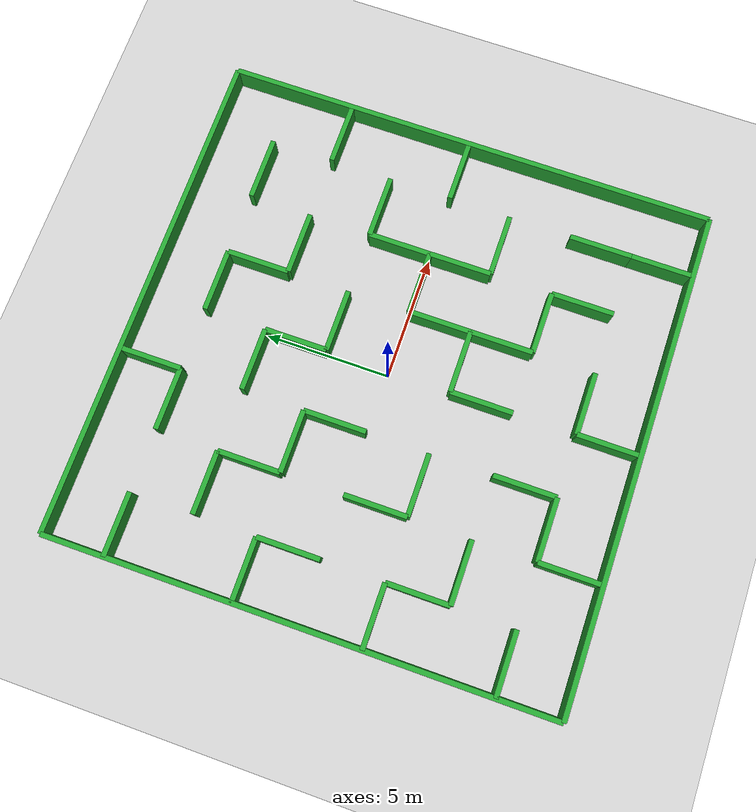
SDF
<?xml version="1.0" ?>
<sdf version="1.6">
  <world name="complex_maze_v4_edited">

    <!-- Physics Engine Configuration -->
    <physics type="ode">
      <max_step_size>0.004</max_step_size>
      <real_time_factor>1</real_time_factor>
      <real_time_update_rate>250</real_time_update_rate>
      <gravity>0 0 -9.8</gravity>
    </physics>

    <!-- Scene Lighting and Background -->
    <scene>
      <shadows>true</shadows>
      <ambient>0.4 0.4 0.4 1</ambient>
      <background>0.7 0.7 0.7 1</background>
      <grid>false</grid>
      <origin_visual>false</origin_visual>
    </scene>

    <!-- Main directional light (Sun) -->
    <light type="directional" name="sun">
      <cast_shadows>true</cast_shadows>
      <pose>0 0 10 0 0 0</pose>
      <diffuse>0.8 0.8 0.8 1</diffuse>
      <specular>0.2 0.2 0.2 1</specular>
      <direction>-0.5 0.1 -0.9</direction>
    </light>

    <!-- A simple grey ground plane -->
    <model name="ground_plane">
      <static>true</static>
      <link name="link">
        <collision name="collision">
          <geometry>
            <plane>
              <normal>0 0 1</normal>
              <size>100 100</size>
            </plane>
          </geometry>
        </collision>
        <visual name="visual">
          <cast_shadows>false</cast_shadows>
          <geometry>
            <plane>
              <normal>0 0 1</normal>
              <size>100 100</size>
            </plane>
          </geometry>
          <material>
            <script>
              <uri>file://media/materials/scripts/gazebo.material</uri>
              <name>Gazebo/Grey</name>
            </script>
          </material>
        </visual>
      </link>
    </model>

    <!--
    ============================================================
    MAZE WALLS (New, complex, solvable maze)
    ============================================================
    -->
    <model name="complex_maze_walls">
      <static>true</static>
      <pose>0 0 0 0 0 0</pose>

      <!-- Gazebo Material for walls -->
      <visual name="v_mat">
        <geometry><box><size>0.1 0.1 0.1</size></box></geometry>
        <pose>0 0 -100 0 0 0</pose> <!-- Hide this box -->
        <material>
          <script>
            <uri>file://media/materials/scripts/gazebo.material</uri>
            <name>Gazebo/Green</name>
          </script>
        </material>
      </visual>

      <!-- Outer Walls (20x20 meters) -->
      <link name="wall_north">
        <collision name="col_north"><geometry><box><size>20 0.2 1</size></box></geometry></collision>
        <visual name="vis_north"><geometry><box><size>20 0.2 1</size></box></geometry><material><script><name>Gazebo/Green</name></script></material></visual>
        <pose>0 10 0.5 0 0 0</pose>
      </link>
      <link name="wall_south">
        <collision name="col_south"><geometry><box><size>20 0.2 1</size></box></geometry></collision>
        <visual name="vis_south"><geometry><box><size>20 0.2 1</size></box></geometry><material><script><name>Gazebo/Green</name></script></material></visual>
        <pose>0 -10 0.5 0 0 0</pose>
      </link>
      <link name="wall_east">
        <collision name="col_east"><geometry><box><size>0.2 20 1</size></box></geometry></collision>
        <visual name="vis_east"><geometry><box><size>0.2 20 1</size></box></geometry><material><script><name>Gazebo/Green</name></script></material></visual>
        <pose>10 0 0.5 0 0 0</pose>
      </link>
      <link name="wall_west">
        <collision name="col_west"><geometry><box><size>0.2 20 1</size></box></geometry></collision>
        <visual name="vis_west"><geometry><box><size>0.2 20 1</size></box></geometry><material><script><name>Gazebo/Green</name></script></material></visual>
        <pose>-10 0 0.5 0 0 0</pose>
      </link>

      <!-- Maze Interior Grid -->
      <!-- Corridors are 2.5m wide. Walls are at -7.5, -5, -2.5, 0, 2.5, 5, 7.5 -->

      <!-- Horizontal Walls -->
      <link name="h_wall_1">
        <collision name="col_h1"><geometry><box><size>2.5 0.2 1</size></box></geometry></collision>
        <visual name="vis_h1"><geometry><box><size>2.5 0.2 1</size></box></geometry><material><script><name>Gazebo/Green</name></script></material></visual>
        <pose>-8.75 7.5 0.5 0 0 0</pose>
      </link>
      <link name="h_wall_2">
        <collision name="col_h2"><geometry><box><size>2.5 0.2 1</size></box></geometry></collision>
        <visual name="vis_h2"><geometry><box><size>2.5 0.2 1</size></box></geometry><material><script><name>Gazebo/Green</name></script></material></visual>
        <pose>-3.75 7.5 0.5 0 0 0</pose>
      </link>
      <link name="h_wall_3">
        <collision name="col_h3"><geometry><box><size>2.5 0.2 1</size></box></geometry></collision>
        <visual name="vis_h3"><geometry><box><size>2.5 0.2 1</size></box></geometry><material><script><name>Gazebo/Green</name></script></material></visual>
        <pose>1.25 7.5 0.5 0 0 0</pose>
      </link>
      <link name="h_wall_4">
        <collision name="col_h4"><geometry><box><size>2.5 0.2 1</size></box></geometry></collision>
        <visual name="vis_h4"><geometry><box><size>2.5 0.2 1</size></box></geometry><material><script><name>Gazebo/Green</name></script></material></visual>
        <pose>6.25 7.5 0.5 0 0 0</pose>
      </link>

      <link name="h_wall_5">
        <collision name="col_h5"><geometry><box><size>2.5 0.2 1</size></box></geometry></collision>
        <visual name="vis_h5"><geometry><box><size>2.5 0.2 1</size></box></geometry><material><script><name>Gazebo/Green</name></script></material></visual>
        <pose>-6.25 5 0.5 0 0 0</pose>
      </link>
      <link name="h_wall_6">
        <collision name="col_h6"><geometry><box><size>2.5 0.2 1</size></box></geometry></collision>
        <visual name="vis_h6"><geometry><box><size>2.5 0.2 1</size></box></geometry><material><script><name>Gazebo/Green</name></script></material></visual>
        <pose>-1.25 5 0.5 0 0 0</pose>
      </link>
      <link name="h_wall_7">
        <collision name="col_h7"><geometry><box><size>2.5 0.2 1</size></box></geometry></collision>
        <visual name="vis_h7"><geometry><box><size>2.5 0.2 1</size></box></geometry><material><script><name>Gazebo/Green</name></script></material></visual>
        <pose>3.75 5 0.5 0 0 0</pose>
      </link>
      <link name="h_wall_8">
        <collision name="col_h8"><geometry><box><size>2.5 0.2 1</size></box></geometry></collision>
        <visual name="vis_h8"><geometry><box><size>2.5 0.2 1</size></box></geometry><material><script><name>Gazebo/Green</name></script></material></visual>
        <pose>8.75 5 0.5 0 0 0</pose>
      </link>

      <link name="h_wall_9">
        <collision name="col_h9"><geometry><box><size>2.5 0.2 1</size></box></geometry></collision>
        <visual name="vis_h9"><geometry><box><size>2.5 0.2 1</size></box></geometry><material><script><name>Gazebo/Green</name></script></material></visual>
        <pose>-8.75 2.5 0.5 0 0 0</pose>
      </link>
      <link name="h_wall_10">
        <collision name="col_h10"><geometry><box><size>2.5 0.2 1</size></box></geometry></collision>
        <visual name="vis_h10"><geometry><box><size>2.5 0.2 1</size></box></geometry><material><script><name>Gazebo/Green</name></script></material></visual>
        <pose>-3.75 2.5 0.5 0 0 0</pose>
      </link>
      <link name="h_wall_11">
        <collision name="col_h11"><geometry><box><size>2.5 0.2 1</size></box></geometry></collision>
        <visual name="vis_h11"><geometry><box><size>2.5 0.2 1</size></box></geometry><material><script><name>Gazebo/Green</name></script></material></visual>
        <pose>1.25 2.5 0.5 0 0 0</pose>
      </link>
      <link name="h_wall_12">
        <collision name="col_h12"><geometry><box><size>2.5 0.2 1</size></box></geometry></collision>
        <visual name="vis_h12"><geometry><box><size>2.5 0.2 1</size></box></geometry><material><script><name>Gazebo/Green</name></script></material></visual>
        <pose>6.25 2.5 0.5 0 0 0</pose>
      </link>

      <!-- REMOVED h_wall_13 (-6.25, 0) -->

      <link name="h_wall_14">
        <collision name="col_h14"><geometry><box><size>2.5 0.2 1</size></box></geometry></collision>
        <visual name="vis_h14"><geometry><box><size>2.5 0.2 1</size></box></geometry><material><script><name>Gazebo/Green</name></script></material></visual>
        <pose>3.75 0 0.5 0 0 0</pose>
      </link>
      <link name="h_wall_15">
        <collision name="col_h15"><geometry><box><size>2.5 0.2 1</size></box></geometry></collision>
        <visual name="vis_h15"><geometry><box><size>2.5 0.2 1</size></box></geometry><material><script><name>Gazebo/Green</name></script></material></visual>
        <pose>8.75 0 0.5 0 0 0</pose>
      </link>

      <link name="h_wall_16">
        <collision name="col_h16"><geometry><box><size>2.5 0.2 1</size></box></geometry></collision>
        <visual name="vis_h16"><geometry><box><size>2.5 0.2 1</size></box></geometry><material><script><name>Gazebo/Green</name></script></material></visual>
        <pose>-8.75 -2.5 0.5 0 0 0</pose>
      </link>
      <link name="h_wall_17">
        <collision name="col_h17"><geometry><box><size>2.5 0.2 1</size></box></geometry></collision>
        <visual name="vis_h17"><geometry><box><size>2.5 0.2 1</size></box></geometry><material><script><name>Gazebo/Green</name></script></material></visual>
        <pose>-3.75 -2.5 0.5 0 0 0</pose>
      </link>
      <link name="h_wall_18">
        <collision name="col_h18"><geometry><box><size>2.5 0.2 1</size></box></geometry></collision>
        <visual name="vis_h18"><geometry><box><size>2.5 0.2 1</size></box></geometry><material><script><name>Gazebo/Green</name></script></material></visual>
        <pose>1.25 -2.5 0.5 0 0 0</pose>
      </link>
      <link name="h_wall_19">
        <collision name="col_h19"><geometry><box><size>2.5 0.2 1</size></box></geometry></collision>
        <visual name="vis_h19"><geometry><box><size>2.5 0.2 1</size></box></geometry><material><script><name>Gazebo/Green</name></script></material></visual>
        <pose>6.25 -2.5 0.5 0 0 0</pose>
      </link>

      <link name="h_wall_20">
        <collision name="col_h20"><geometry><box><size>2.5 0.2 1</size></box></geometry></collision>
        <visual name="vis_h20"><geometry><box><size>2.5 0.2 1</size></box></geometry><material><script><name>Gazebo/Green</name></script></material></visual>
        <pose>-6.25 -5 0.5 0 0 0</pose>
      </link>

      <!-- REMOVED h_wall_21 (-1.25, -5) -->

      <link name="h_wall_22">
        <collision name="col_h22"><geometry><box><size>2.5 0.2 1</size></box></geometry></collision>
        <visual name="vis_h22"><geometry><box><size>2.5 0.2 1</size></box></geometry><material><script><name>Gazebo/Green</name></script></material></visual>
        <pose>3.75 -5 0.5 0 0 0</pose>
      </link>

      <!-- REMOVED h_wall_23 (8.75, -5) -->

      <link name="h_wall_24">
        <collision name="col_h24"><geometry><box><size>2.5 0.2 1</size></box></geometry></collision>
        <visual name="vis_h24"><geometry><box><size>2.5 0.2 1</size></box></geometry><material><script><name>Gazebo/Green</name></script></material></visual>
        <pose>-8.75 -7.5 0.5 0 0 0</pose>
      </link>
      <link name="h_wall_25">
        <collision name="col_h25"><geometry><box><size>2.5 0.2 1</size></box></geometry></collision>
        <visual name="vis_h25"><geometry><box><size>2.5 0.2 1</size></box></geometry><material><script><name>Gazebo/Green</name></script></material></visual>
        <pose>-3.75 -7.5 0.5 0 0 0</pose>
      </link>
      <link name="h_wall_26">
        <collision name="col_h26"><geometry><box><size>2.5 0.2 1</size></box></geometry></collision>
        <visual name="vis_h26"><geometry><box><size>2.5 0.2 1</size></box></geometry><material><script><name>Gazebo/Green</name></script></material></visual>
        <pose>1.25 -7.5 0.5 0 0 0</pose>
      </link>

      <!-- REMOVED h_wall_27 (6.25, -7.5) -->

      <!-- Vertical Walls -->

      <!-- REMOVED v_wall_1 (-7.5, 8.75) -->

      <link name="v_wall_2">
        <collision name="col_v2"><geometry><box><size>0.2 2.5 1</size></box></geometry></collision>
        <visual name="vis_v2"><geometry><box><size>0.2 2.5 1</size></box></geometry><material><script><name>Gazebo/Green</name></script></material></visual>
        <pose>-5 3.75 0.5 0 0 0</pose>
      </link>
      <link name="v_wall_3">
        <collision name="col_v3"><geometry><box><size>0.2 2.5 1</size></box></geometry></collision>
        <visual name="vis_v3"><geometry><box><size>0.2 2.5 1</size></box></geometry><material><script><name>Gazebo/Green</name></script></material></visual>
        <pose>-2.5 8.75 0.5 0 0 0</pose>
      </link>
      <link name="v_wall_4">
        <collision name="col_v4"><geometry><box><size>0.2 2.5 1</size></box></geometry></collision>
        <visual name="vis_v4"><geometry><box><size>0.2 2.5 1</size></box></geometry><material><script><name>Gazebo/Green</name></script></material></visual>
        <pose>0 3.75 0.5 0 0 0</pose>
      </link>
      <link name="v_wall_5">
        <collision name="col_v5"><geometry><box><size>0.2 2.5 1</size></box></geometry></collision>
        <visual name="vis_v5"><geometry><box><size>0.2 2.5 1</size></box></geometry><material><script><name>Gazebo/Green</name></script></material></visual>
        <pose>2.5 6.25 0.5 0 0 0</pose>
      </link>
      <link name="v_wall_6">
        <collision name="col_v6"><geometry><box><size>0.2 2.5 1</size></box></geometry></collision>
        <visual name="vis_v6"><geometry><box><size>0.2 2.5 1</size></box></geometry><material><script><name>Gazebo/Green</name></script></material></visual>
        <pose>5 1.25 0.5 0 0 0</pose>
      </link>

      <!-- REMOVED v_wall_7 (7.5, 3.75) -->

      <link name="v_wall_8">
        <collision name="col_v8"><geometry><box><size>0.2 2.5 1</size></box></geometry></collision>
        <visual name="vis_v8"><geometry><box><size>0.2 2.5 1</size></box></geometry><material><script><name>Gazebo/Green</name></script></material></visual>
        <pose>-7.5 1.25 0.5 0 0 0</pose>
      </link>
      <link name="v_wall_9">
        <collision name="col_v9"><geometry><box><size>0.2 2.5 1</size></box></geometry></collision>
        <visual name="vis_v9"><geometry><box><size>0.2 2.5 1</size></box></geometry><material><script><name>Gazebo/Green</name></script></material></visual>
        <pose>-5 -1.25 0.5 0 0 0</pose>
      </link>
      <link name="v_wall_10">
        <collision name="col_v10"><geometry><box><size>0.2 2.5 1</size></box></geometry></collision>
        <visual name="vis_v10"><geometry><box><size>0.2 2.5 1</size></box></geometry><material><script><name>Gazebo/Green</name></script></material></visual>
        <pose>-2.5 1.25 0.5 0 0 0</pose>
      </link>
      <link name="v_wall_11">
        <collision name="col_v11"><geometry><box><size>0.2 2.5 1</size></box></geometry></collision>
        <visual name="vis_v11"><geometry><box><size>0.2 2.5 1</size></box></geometry><material><script><name>Gazebo/Green</name></script></material></visual>
        <pose>0 -3.75 0.5 0 0 0</pose>
      </link>
      <link name="v_wall_12">
        <collision name="col_v12"><geometry><box><size>0.2 2.5 1</size></box></geometry></collision>
        <visual name="vis_v12"><geometry><box><size>0.2 2.5 1</size></box></geometry><material><script><name>Gazebo/Green</name></script></material></visual>
        <pose>2.5 -1.25 0.5 0 0 0</pose>
      </link>
      <link name="v_wall_13">
        <collision name="col_v13"><geometry><box><size>0.2 2.5 1</size></box></geometry></collision>
        <visual name="vis_v13"><geometry><box><size>0.2 2.5 1</size></box></geometry><material><script><name>Gazebo/Green</name></script></material></visual>
        <pose>5 -6.25 0.5 0 0 0</pose>
      </link>
      <link name="v_wall_14">
        <collision name="col_v14"><geometry><box><size>0.2 2.5 1</size></box></geometry></collision>
        <visual name="vis_v14"><geometry><box><size>0.2 2.5 1</size></box></geometry><material><script><name>Gazebo/Green</name></script></material></visual>
        <pose>7.5 -8.75 0.5 0 0 0</pose>
      </link>

      <link name="v_wall_15">
        <collision name="col_v15"><geometry><box><size>0.2 2.5 1</size></box></geometry></collision>
        <visual name="vis_v15"><geometry><box><size>0.2 2.5 1</size></box></geometry><material><script><name>Gazebo/Green</name></script></material></visual>
        <pose>-7.5 -3.75 0.5 0 0 0</pose>
      </link>
      <link name="v_wall_16">
        <collision name="col_v16"><geometry><box><size>0.2 2.5 1</size></box></geometry></collision>
        <visual name="vis_v16"><geometry><box><size>0.2 2.5 1</size></box></geometry><material><script><name>Gazebo/Green</name></script></material></visual>
        <pose>-5 -8.75 0.5 0 0 0</pose>
      </link>
      <link name="v_wall_17">
        <collision name="col_v17"><geometry><box><size>0.2 2.5 1</size></box></geometry></collision>
        <visual name="vis_v17"><geometry><box><size>0.2 2.5 1</size></box></geometry><material><script><name>Gazebo/Green</name></script></material></visual>
        <pose>-2.5 -6.25 0.5 0 0 0</pose>
      </link>
      <link name="v_wall_18">
        <collision name="col_v18"><geometry><box><size>0.2 2.5 1</size></box></geometry></collision>
        <visual name="vis_v18"><geometry><box><size>0.2 2.5 1</size></box></geometry><material><script><name>Gazebo/Green</name></script></material></visual>
        <pose>0 -8.75 0.5 0 0 0</pose>
      </link>
      <link name="v_wall_19">
        <collision name="col_v19"><geometry><box><size>0.2 2.5 1</size></box></geometry></collision>
        <visual name="vis_v19"><geometry><box><size>0.2 2.5 1</size></box></geometry><material><script><name>Gazebo/Green</name></script></material></visual>
        <pose>2.5 -3.75 0.5 0 0 0</pose>
      </link>
      <link name="v_wall_20">
        <collision name="col_v20"><geometry><box><size>0.2 2.5 1</size></box></geometry></collision>
        <visual name="vis_v20"><geometry><box><size>0.2 2.5 1</size></box></geometry><material><script><name>Gazebo/Green</name></script></material></visual>
        <pose>5 -1.25 0.5 0 0 0</pose>
      </link>
      <link name="v_wall_21">
        <collision name="col_v21"><geometry><box><size>0.2 2.5 1</size></box></geometry></collision>
        <visual name="vis_v21"><geometry><box><size>0.2 2.5 1</size></box></geometry><material><script><name>Gazebo/Green</name></script></material></visual>
        <pose>7.5 -6.25 0.5 0 0 0</pose>
      </link>

    </model>
  </world>
</sdf>
